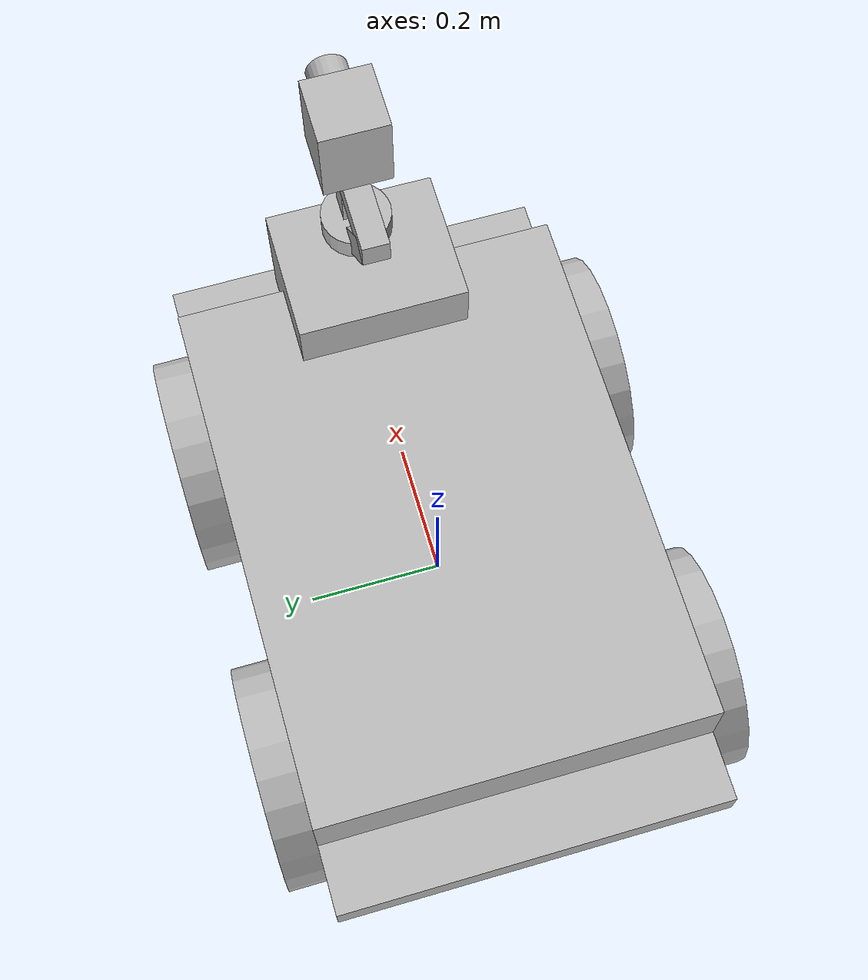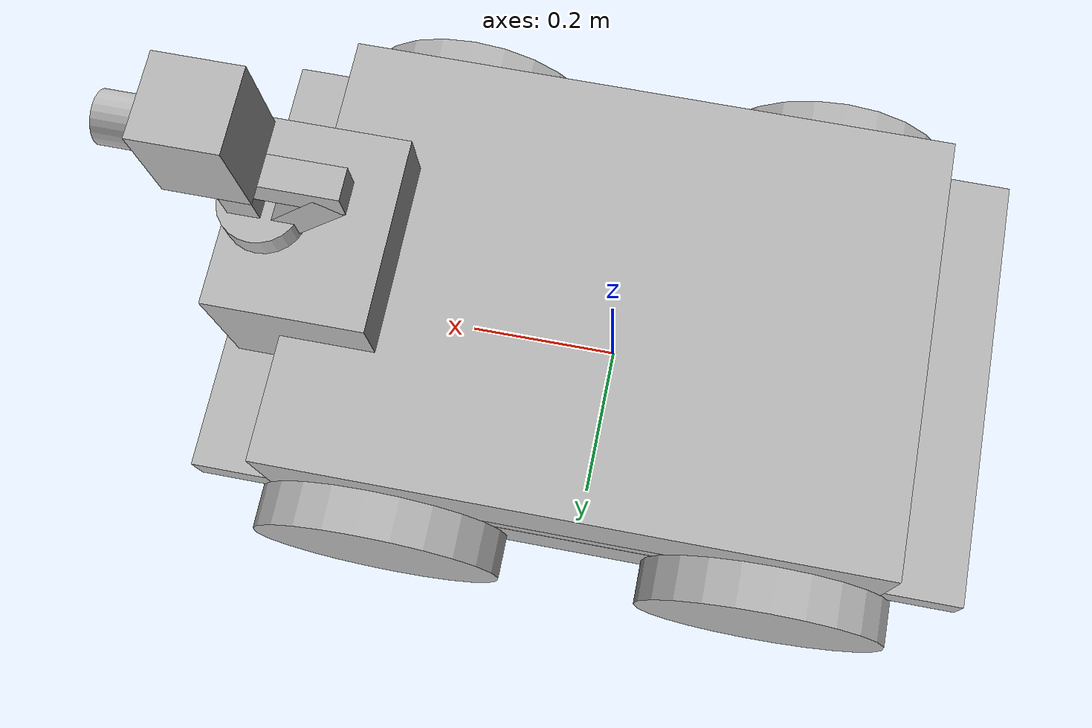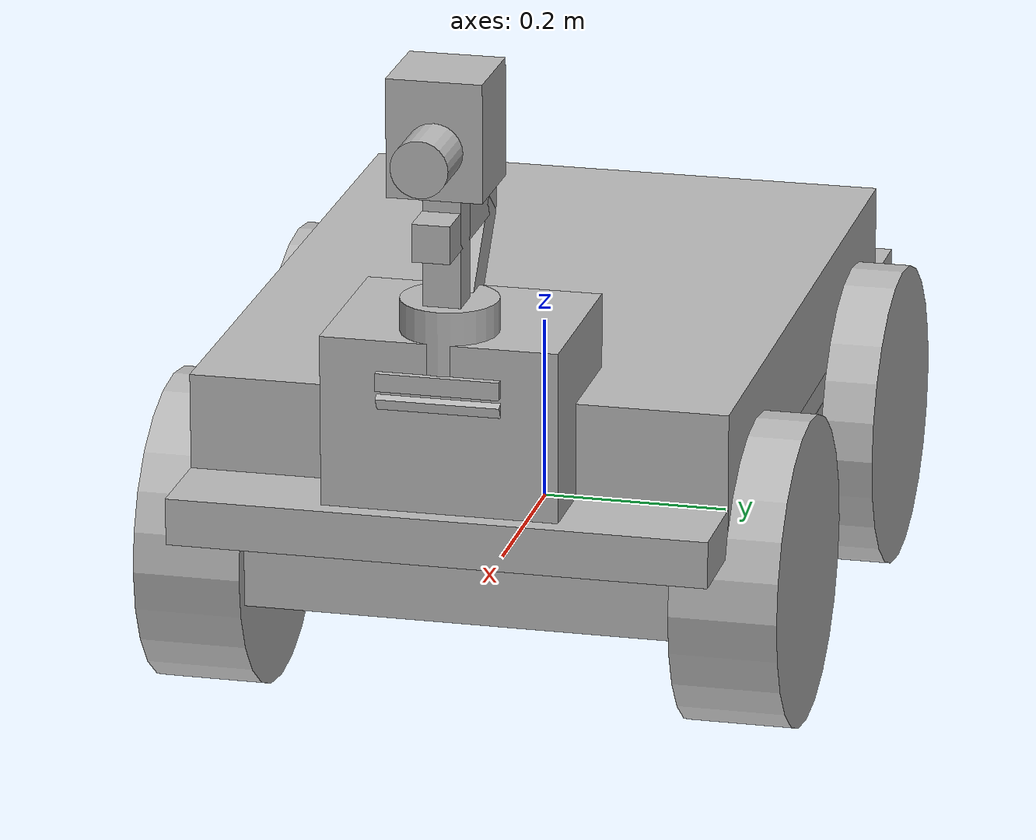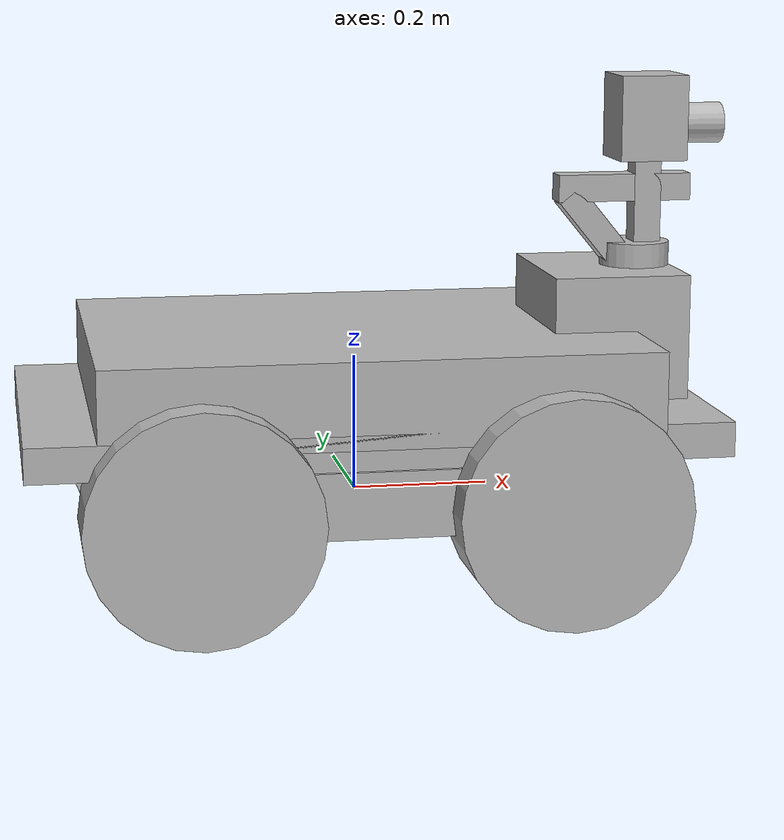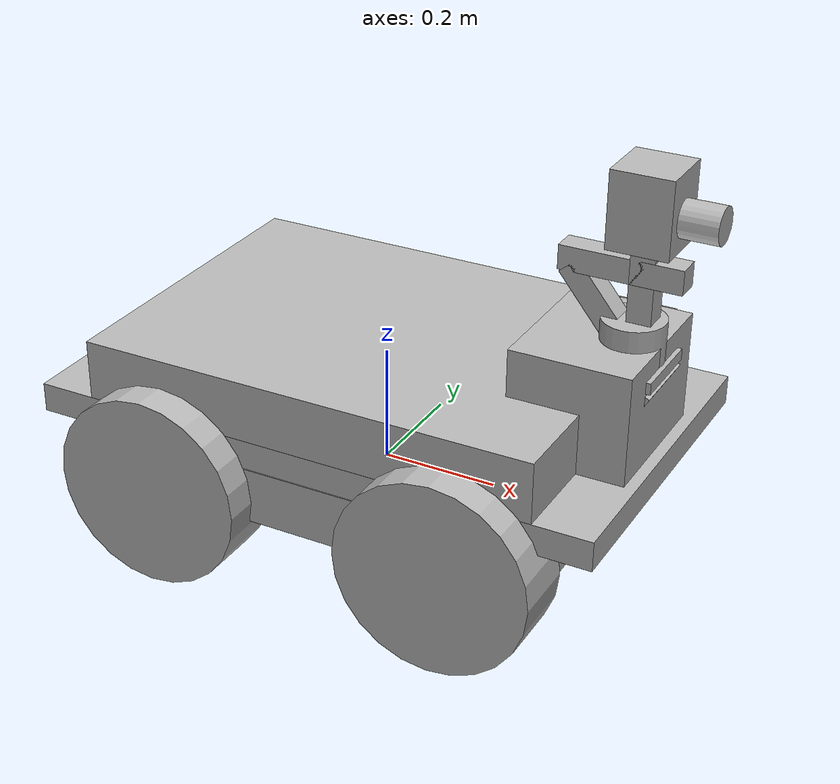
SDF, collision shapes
<?xml version='1.0' encoding='utf-8'?>
<sdf version="1.6">
  <model name="marble_husky">
    <link name="base_link">
      <inertial>
        <pose>-0.000543 -0.084945 0.062329 0 -0 0</pose>
        <mass>46.064</mass>
        <inertia>
          <ixx>0.615397</ixx>
          <ixy>-0.0240585</ixy>
          <ixz>-0.120749</ixz>
          <iyy>1.75388</iyy>
          <iyz>-0.0028322</iyz>
          <izz>2.03641</izz>
        </inertia>
      </inertial>
      <collision name="base_link_collision">
        <pose>0 0 0.12 0 0 0</pose>
        <geometry>
          <box>
            <size>0.9874 0.5709 0.05</size>
          </box>
        </geometry>
      </collision>
      <collision name="base_link_collision_bottom">
        <pose>0 0 0.046 0 0 0</pose>
        <geometry>
          <box>
            <size>0.80 0.5709 0.095</size>
          </box>
        </geometry>
      </collision>
      <collision name="base_link_collision_1">
        <pose>0 0 0.185625 0 -0 0</pose>
        <geometry>
          <box>
            <size>0.78992 0.5709 0.12375</size>
          </box>
        </geometry>
      </collision>
      <collision name="base_link_fixed_joint_lump__camera/camera_link_collision_2">
        <pose>0.478 0 0.285 0 -0 0</pose>
        <geometry>
          <box>
            <size>0.0078 0.13 0.0192</size>
          </box>
        </geometry>
        <surface>
          <contact>
            <ode>
              <kp>1e+13</kp>
              <kd>1</kd>
            </ode>
          </contact>
          <friction>
            <ode>
              <mu2>1</mu2>
              <fdir1>0 0 0</fdir1>
            </ode>
          </friction>
        </surface>
      </collision>
      <collision name="base_link_fixed_joint_lump__camera/camera_link_collision_3">
        <pose>0.473 0 0.260 0 0.5236 0</pose>
        <geometry>
          <box>
            <size>0.0078 0.13 0.0192</size>
          </box>
        </geometry>
        <surface>
          <contact>
            <ode>
              <kp>1e+13</kp>
              <kd>1</kd>
            </ode>
          </contact>
          <friction>
            <ode>
              <mu2>1</mu2>
              <fdir1>0 0 0</fdir1>
            </ode>
          </friction>
        </surface>
      </collision>
      <collision name="base_link_fixed_joint_lump__velodyne_base_link_collision_6">
        <pose>0.424 0 0.327 0 -0 0</pose>
        <geometry>
          <cylinder>
            <length>0.0717</length>
            <radius>0.0516</radius>
          </cylinder>
        </geometry>
      </collision>
      <collision name="base_link_fixed_joint_lump__sensor_tower_8">
       <pose>0.374 0 0.215 0 -0 0</pose>
        <geometry>
          <box>
            <size>0.2 0.25 0.225</size>
          </box>
        </geometry>
      </collision>
      <collision name="base_link_fixed_joint_lump__landing_pad_9">
        <pose>0.0 0 0.155 0 -0 0</pose>
        <geometry>
          <box>
            <size>0.500 0.385 0.155</size>
          </box>
        </geometry>
      </collision>
      <visual name="base_link_visual">
        <geometry>
          <mesh>
            <scale>1 1 1</scale>
            <uri>https://fuel.ignitionrobotics.org/1.0/OpenRobotics/models/MARBLE_HUSKY_SENSOR_CONFIG_4/tip/files/meshes/base_link.dae</uri>
          </mesh>
        </geometry>
      </visual>
      <visual name="base_link_fixed_joint_lump__front_bumper_link_visual_3">
        <pose>0.48 0 0.091 0 -0 0</pose>
        <geometry>
          <mesh>
            <scale>1 1 1</scale>
            <uri>https://fuel.ignitionrobotics.org/1.0/OpenRobotics/models/MARBLE_HUSKY_SENSOR_CONFIG_4/tip/files/meshes/bumper.dae</uri>
          </mesh>
        </geometry>
      </visual>
      <visual name="base_link_fixed_joint_lump__rear_bumper_link_visual_4">
        <pose>-0.48 0 0.091 0 -0 3.14159</pose>
        <geometry>
          <mesh>
            <scale>1 1 1</scale>
            <uri>https://fuel.ignitionrobotics.org/1.0/OpenRobotics/models/MARBLE_HUSKY_SENSOR_CONFIG_4/tip/files/meshes/bumper.dae</uri>
          </mesh>
        </geometry>
      </visual>
      <visual name="base_link_fixed_joint_lump__top_chassis_link_visual_5">
        <geometry>
          <mesh>
            <scale>1 1 1</scale>
            <uri>https://fuel.ignitionrobotics.org/1.0/OpenRobotics/models/MARBLE_HUSKY_SENSOR_CONFIG_4/tip/files/meshes/top_chassis.dae</uri>
          </mesh>
        </geometry>
      </visual>

      <!-- Rail on top of husky -->
      <visual name="base_link_fixed_joint_lump__user_rail_link_visual_13">
        <pose>0.272 0 0.245 0 -0 0</pose>
        <geometry>
          <mesh>
            <scale>1 1 1</scale>
            <uri>https://fuel.ignitionrobotics.org/1.0/OpenRobotics/models/MARBLE_HUSKY_SENSOR_CONFIG_4/tip/files/meshes/user_rail.dae</uri>
          </mesh>
        </geometry>
      </visual>
      <!-- 2D planar lidar at bottom of sensor suite -->
      <visual name="base_link_fixed_joint_lump__planar_lidar_link_visual_14">
        <pose>0.474 0 0.127 0 -0 0</pose>
        <geometry>
          <cylinder>
              <radius>0.045</radius>
              <length>0.05</length>
          </cylinder>
        </geometry>
      </visual>
      <visual name="base_link_fixed_joint_lump__sensor_tower_16">
       <pose>0.374 0 0.215 0 -0 0</pose>
        <geometry>
          <box>
            <size>0.2 0.25 0.225</size>
          </box>
        </geometry>
      </visual>
      <visual name="base_link_fixed_joint_lump__landing_pad_17">
       <pose>0.0 0 0.155 0 -0 0</pose>
        <geometry>
          <box>
            <size>0.500 0.385 0.155</size>
          </box>
        </geometry>
      </visual>

      <visual name="sensor_head_visual">
        <pose>0.4379 0 .54818 0 0 0</pose>
        <geometry>
          <box>
            <size>0.1 0.1 0.125</size>
          </box>
        </geometry>
      </visual>
      <collision name="sensor_head_collision">
        <pose>0.4379 0 0.54818 0 0 0</pose>
        <geometry>
          <box>
            <size>0.1 0.1 0.125</size>
          </box>
        </geometry>
      </collision>
      <visual name="sensor_tower_support_visual">
        <pose>0.4379 0 0.39918 0 0 0</pose>
        <geometry>
          <box>
            <size>0.04 0.04 0.25</size>
          </box>
        </geometry>
      </visual>
      <collision name="sensor_tower_support_collision">
        <pose>0.4379 0 0.39918 0 0 0</pose>
        <geometry>
          <box>
            <size>0.04 0.04 0.25</size>
          </box>
        </geometry>
      </collision>
      <visual name="vertical_lidar_support_visual">
        <pose>0.4029 0 0.44418 0 0 0</pose>/
        <geometry>
          <box>
            <size>0.2 0.04 0.04</size>
          </box>
        </geometry>
      </visual>
      <collision name="vertical_lidar_support_collision">
        <pose>0.4029 0 0.44418 0 0 0</pose>
        <geometry>
          <box>
            <size>0.2 0.04 0.04</size>
          </box>
        </geometry>
      </collision>
      <visual name="diagonal_lidar_support_visual">
        <pose>0.3779 0 0.36418 0 0.8854 0</pose>
        <geometry>
          <box>
            <size>0.180 0.04 0.04</size>
          </box>
        </geometry>
      </visual>
      <collision name="diagonal_lidar_support_collision">
        <pose>0.3779 0 0.36418 0 0.8854 0</pose>
        <geometry>
          <box>
            <size>0.180 0.04 0.04</size>
          </box>
        </geometry>
      </collision>
      <sensor name="imu_sensor" type="imu">
        <always_on>1</always_on>
        <update_rate>500</update_rate>
        <topic>imu</topic>
        <imu>
                <enable_orientation>0</enable_orientation>
                <angular_velocity>
                    <x>
                        <noise type="gaussian">
                            <mean>0</mean>
                            <stddev>0.009</stddev>
                            <bias_mean>0.00075</bias_mean>
                            <bias_stddev>0.005</bias_stddev>
                            <dynamic_bias_stddev>0.00002</dynamic_bias_stddev>
                            <dynamic_bias_correlation_time>400.0</dynamic_bias_correlation_time>
                            <precision>0.00025</precision>
                        </noise>
                    </x>
                    <y>
                        <noise type="gaussian">
                            <mean>0</mean>
                            <stddev>0.009</stddev>
                            <bias_mean>0.00075</bias_mean>
                            <bias_stddev>0.005</bias_stddev>
                            <dynamic_bias_stddev>0.00002</dynamic_bias_stddev>
                            <dynamic_bias_correlation_time>400.0</dynamic_bias_correlation_time>
                            <precision>0.00025</precision>
                        </noise>
                    </y>
                    <z>
                        <noise type="gaussian">
                            <mean>0</mean>
                            <stddev>0.009</stddev>
                            <bias_mean>0.00075</bias_mean>
                            <bias_stddev>0.005</bias_stddev>
                            <dynamic_bias_stddev>0.00002</dynamic_bias_stddev>
                            <dynamic_bias_correlation_time>400.0</dynamic_bias_correlation_time>
                            <precision>0.00025</precision>
                        </noise>
                    </z>
                </angular_velocity>
                <linear_acceleration>
                    <x>
                        <noise type="gaussian">
                            <mean>0</mean>
                            <stddev>0.021</stddev>
                            <bias_mean>0.05</bias_mean>
                            <bias_stddev>0.0075</bias_stddev>
                            <dynamic_bias_stddev>0.000375</dynamic_bias_stddev>
                            <dynamic_bias_correlation_time>175.0</dynamic_bias_correlation_time>
                            <precision>0.005</precision>
                        </noise>
                    </x>
                    <y>
                        <noise type="gaussian">
                            <mean>0</mean>
                            <stddev>0.021</stddev>
                            <bias_mean>0.05</bias_mean>
                            <bias_stddev>0.0075</bias_stddev>
                            <dynamic_bias_stddev>0.000375</dynamic_bias_stddev>
                            <dynamic_bias_correlation_time>175.0</dynamic_bias_correlation_time>
                            <precision>0.005</precision>
                        </noise>
                    </y>
                    <z>
                        <noise type="gaussian">
                            <mean>0</mean>
                            <stddev>0.021</stddev>
                            <bias_mean>0.05</bias_mean>
                            <bias_stddev>0.0075</bias_stddev>
                            <dynamic_bias_stddev>0.000375</dynamic_bias_stddev>
                            <dynamic_bias_correlation_time>175.0</dynamic_bias_correlation_time>
                            <precision>0.005</precision>
                        </noise>
                    </z>
                </linear_acceleration>
          </imu>
      </sensor>

        <!-- Bottom cylinder of Ouster/Velodyne 3D Lidar -->
        <visual name="base_link_fixed_joint_lump__velodyne_base_link_visual_10">
          <pose>0.4379 0 0.61018 0 -0 0</pose>
          <geometry>
            <mesh>
              <scale>1 1 1</scale>
              <uri>https://fuel.ignitionrobotics.org/1.0/OpenRobotics/models/MARBLE_HUSKY_SENSOR_CONFIG_4/tip/files/meshes/VLP16_base_1.dae</uri>
            </mesh>
          </geometry>
        </visual>
        <!-- Top cylinder of Ouster/Velodyne 3D Lidar -->
        <visual name="base_link_fixed_joint_lump__velodyne_base_link_visual_11">
          <pose>0.4379 0 0.61018 0 -0 0</pose>
          <geometry>
            <mesh>
              <scale>1 1 1</scale>
              <uri>https://fuel.ignitionrobotics.org/1.0/OpenRobotics/models/MARBLE_HUSKY_SENSOR_CONFIG_4/tip/files/meshes/VLP16_base_2.dae</uri>
            </mesh>
          </geometry>
        </visual>
        <!-- Main cylinder of Ouster/Velodyne 3D Lidar -->
        <visual name="base_link_fixed_joint_lump__velodyne_visual_12">
          <pose>0.4379 0 0.61018 0 -0 0</pose>
          <geometry>
            <mesh>
              <scale>1 1 1</scale>
              <uri>https://fuel.ignitionrobotics.org/1.0/OpenRobotics/models/MARBLE_HUSKY_SENSOR_CONFIG_4/tip/files/meshes/VLP16_scan.dae</uri>
            </mesh>
          </geometry>
        </visual>

        <!-- OS1-64 3D Laser Configuration (10x2048 or 10x1024 or 20x1024 or 20x512 as possible (rate) x (hor. res.) configs)-->
      <sensor name="front_laser" type="gpu_lidar">
        <visualize>true</visualize>
        <update_rate>3</update_rate>
        <topic>lidar</topic>
        <lidar>
          <scan>
            <horizontal>
              <samples>64</samples>
              <resolution>1</resolution>
              <min_angle>-3.14159</min_angle>
              <max_angle>3.14159</max_angle>
            </horizontal>
            <vertical>
              <samples>8</samples>
              <resolution>1</resolution>
              <min_angle>-0.1</min_angle>
              <max_angle>0.1</max_angle>
            </vertical>
          </scan>
          <range>
            <min>0.2</min>
            <max>6</max>
            <resolution>0.1</resolution>
          </range>
          <noise>
            <type>gaussian</type>
            <mean>0</mean>
            <stddev>0.01</stddev>
          </noise>
        </lidar>
        <pose>0.4379 0 0.67018 0 -0 0</pose>
      </sensor>

      <gravity>1</gravity>
      <velocity_decay/>

        <!-- OS1-64 3D Laser Configuration (10x2048 or 10x1024 or 20x1024 or 20x512 as possible (rate) x (hor. res.) configs)-->
        <visual name="camera_front_visual">
            <pose>0.5179 0 0.53718 0 1.5709 0</pose>
            <geometry>
              <cylinder>
                <length>0.065</length>
                <radius>0.03</radius>
              </cylinder>
            </geometry>
        </visual>
        <collision name="camera_front_collision">
          <pose>0.5179 0 0.53718 0 1.5709 0</pose>
          <geometry>
            <cylinder>
              <length>0.065</length>
              <radius>0.03</radius>
            </cylinder>
          </geometry>
        </collision>

        <sensor name="camera" type="camera">
            <pose> 0.5 0 0.5 0 0 0</pose>
            <camera>
                <horizontal_fov>1.089</horizontal_fov>
                <image>
                  <width>360</width>
                  <height>360</height>
                  <format>R8G8B8</format>
                </image>
                <clip>
                  <near>0.1</near>
                  <far>100</far>
                </clip>
            </camera>
            <always_on>1</always_on>
            <update_rate>15.0</update_rate>
            <visualize>true</visualize>
            <topic>camera</topic>
        </sensor>

      <light name="flash" type="spot">
        <cast_shadows>true</cast_shadows>
        <pose>0.2179 0 0.83718 3.14159 1.5709 0</pose>
        <attenuation>
          <range>20</range>
          <linear>0.1</linear>
          <constant>0.1</constant>
          <quadratic>0.0025</quadratic>
        </attenuation>
        <diffuse>0.8 0.8 0.5 1</diffuse>
        <specular>0.8 0.8 0.5 1</specular>
        <spot>
          <inner_angle>0.9</inner_angle>
          <outer_angle>1.0</outer_angle>
          <falloff>1</falloff>
        </spot>
        <direction>0 0 -1</direction>
      </light>
    </link>

    <link name="front_left_wheel_link">
      <pose>0.256 0.2854 0.03282 0 -0 0</pose>
      <inertial>
        <mass>2.637</mass>
        <inertia>
          <ixx>0.02467</ixx>
          <ixy>0</ixy>
          <ixz>0</ixz>
          <iyy>0.04411</iyy>
          <iyz>0</iyz>
          <izz>0.02467</izz>
        </inertia>
      </inertial>
      <collision name="front_left_wheel_link_collision">
        <pose>0 0 0 1.5707963267948966 -0 0</pose>
        <geometry>
          <cylinder>
            <length>0.1143</length>
            <radius>0.1651</radius>
          </cylinder>
        </geometry>
        <surface>
          <contact>
            <ode>
              <kp>1e+07</kp>
              <kd>1</kd>
            </ode>
          </contact>
          <friction>
            <ode>
              <mu>0.5</mu>
              <mu2>1</mu2>
              <slip1>0.00062</slip1>
              <slip2>0</slip2>
              <fdir1>0 0 1</fdir1>
            </ode>
          </friction>
        </surface>
      </collision>
      <visual name="front_left_wheel_link_visual">
        <geometry>
          <mesh>
            <scale>1 1 1</scale>
            <uri>https://fuel.ignitionrobotics.org/1.0/OpenRobotics/models/MARBLE_HUSKY_SENSOR_CONFIG_4/tip/files/meshes/wheel.dae</uri>
          </mesh>
        </geometry>
      </visual>
      <gravity>1</gravity>
      <velocity_decay/>
    </link>
    <joint name="front_left_wheel_joint" type="revolute">
      <child>front_left_wheel_link</child>
      <parent>base_link</parent>
      <axis>
        <xyz>0 1 0</xyz>
        <limit>
          <lower>-1e+16</lower>
          <upper>1e+16</upper>
        </limit>
        <dynamics>
          <spring_reference>0</spring_reference>
          <spring_stiffness>0</spring_stiffness>
        </dynamics>
        <use_parent_model_frame>1</use_parent_model_frame>
      </axis>
    </joint>
    <link name="front_right_wheel_link">
      <pose>0.256 -0.2854 0.03282 0 -0 0</pose>
      <inertial>
        <mass>2.637</mass>
        <inertia>
          <ixx>0.02467</ixx>
          <ixy>0</ixy>
          <ixz>0</ixz>
          <iyy>0.04411</iyy>
          <iyz>0</iyz>
          <izz>0.02467</izz>
        </inertia>
      </inertial>
      <collision name="front_right_wheel_link_collision">
        <pose>0 0 0 1.5707963267948966 -0 0</pose>
        <geometry>
          <cylinder>
            <length>0.1143</length>
            <radius>0.1651</radius>
          </cylinder>
        </geometry>
        <surface>
          <contact>
            <ode>
              <kp>1e+07</kp>
              <kd>1</kd>
            </ode>
          </contact>
          <friction>
            <ode>
              <mu>0.5</mu>
              <mu2>1</mu2>
              <slip1>0.00062</slip1>
              <slip2>0</slip2>
              <fdir1>0 0 1</fdir1>
            </ode>
          </friction>
        </surface>
      </collision>
      <visual name="front_right_wheel_link_visual">
        <geometry>
          <mesh>
            <scale>1 1 1</scale>
            <uri>https://fuel.ignitionrobotics.org/1.0/OpenRobotics/models/MARBLE_HUSKY_SENSOR_CONFIG_4/tip/files/meshes/wheel.dae</uri>
          </mesh>
        </geometry>
      </visual>
      <gravity>1</gravity>
      <velocity_decay/>
    </link>
    <joint name="front_right_wheel_joint" type="revolute">
      <child>front_right_wheel_link</child>
      <parent>base_link</parent>
      <axis>
        <xyz>0 1 0</xyz>
        <limit>
          <lower>-1e+16</lower>
          <upper>1e+16</upper>
        </limit>
        <dynamics>
          <spring_reference>0</spring_reference>
          <spring_stiffness>0</spring_stiffness>
        </dynamics>
        <use_parent_model_frame>1</use_parent_model_frame>
      </axis>
    </joint>
    <link name="rear_left_wheel_link">
      <pose>-0.256 0.2854 0.03282 0 -0 0</pose>
      <inertial>
        <mass>2.637</mass>
        <inertia>
          <ixx>0.02467</ixx>
          <ixy>0</ixy>
          <ixz>0</ixz>
          <iyy>0.04411</iyy>
          <iyz>0</iyz>
          <izz>0.02467</izz>
        </inertia>
      </inertial>
      <collision name="rear_left_wheel_link_collision">
        <pose>0 0 0 1.5707963267948966 -0 0</pose>
        <geometry>
          <cylinder>
            <length>0.1143</length>
            <radius>0.1651</radius>
          </cylinder>
        </geometry>
        <surface>
          <contact>
            <ode>
              <kp>1e+07</kp>
              <kd>1</kd>
            </ode>
          </contact>
          <friction>
            <ode>
              <mu>0.5</mu>
              <mu2>1</mu2>
              <slip1>0.00062</slip1>
              <slip2>0</slip2>
              <fdir1>0 0 1</fdir1>
            </ode>
          </friction>
        </surface>
      </collision>
      <visual name="rear_left_wheel_link_visual">
        <geometry>
          <mesh>
            <scale>1 1 1</scale>
            <uri>https://fuel.ignitionrobotics.org/1.0/OpenRobotics/models/MARBLE_HUSKY_SENSOR_CONFIG_4/tip/files/meshes/wheel.dae</uri>
          </mesh>
        </geometry>
      </visual>
      <gravity>1</gravity>
      <velocity_decay/>
    </link>
    <joint name="rear_left_wheel_joint" type="revolute">
      <child>rear_left_wheel_link</child>
      <parent>base_link</parent>
      <axis>
        <xyz>0 1 0</xyz>
        <limit>
          <lower>-1e+16</lower>
          <upper>1e+16</upper>
        </limit>
        <dynamics>
          <spring_reference>0</spring_reference>
          <spring_stiffness>0</spring_stiffness>
        </dynamics>
        <use_parent_model_frame>1</use_parent_model_frame>
      </axis>
    </joint>
    <link name="rear_right_wheel_link">
      <pose>-0.256 -0.2854 0.03282 0 -0 0</pose>
      <inertial>
        <mass>2.637</mass>
        <inertia>
          <ixx>0.02467</ixx>
          <ixy>0</ixy>
          <ixz>0</ixz>
          <iyy>0.04411</iyy>
          <iyz>0</iyz>
          <izz>0.02467</izz>
        </inertia>
      </inertial>
      <collision name="rear_right_wheel_link_collision">
        <pose>0 0 0 1.5707963267948966 -0 0</pose>
        <geometry>
          <cylinder>
            <length>0.1143</length>
            <radius>0.1651</radius>
          </cylinder>
        </geometry>
        <surface>
          <contact>
            <ode>
              <kp>1e+07</kp>
              <kd>1</kd>
            </ode>
          </contact>
          <friction>
            <ode>
              <mu>0.5</mu>
              <mu2>1</mu2>
              <slip1>0.00062</slip1>
              <slip2>0</slip2>
              <fdir1>0 0 1</fdir1>
            </ode>
          </friction>
        </surface>
      </collision>
      <visual name="rear_right_wheel_link_visual">
        <geometry>
          <mesh>
            <scale>1 1 1</scale>
            <uri>https://fuel.ignitionrobotics.org/1.0/OpenRobotics/models/MARBLE_HUSKY_SENSOR_CONFIG_4/tip/files/meshes/wheel.dae</uri>
          </mesh>
        </geometry>
      </visual>
      <gravity>1</gravity>
      <velocity_decay/>
    </link>
    <joint name="rear_right_wheel_joint" type="revolute">
      <child>rear_right_wheel_link</child>
      <parent>base_link</parent>
      <axis>
        <xyz>0 1 0</xyz>
        <limit>
          <lower>-1e+16</lower>
          <upper>1e+16</upper>
        </limit>
        <dynamics>
          <spring_reference>0</spring_reference>
          <spring_stiffness>0</spring_stiffness>
        </dynamics>
        <use_parent_model_frame>1</use_parent_model_frame>
      </axis>
    </joint>

    <plugin
        filename="gz-sim-diff-drive-system"
        name="gz::sim::systems::DiffDrive">
        <left_joint>rear_left_wheel_joint</left_joint>
        <left_joint>front_left_wheel_joint</left_joint>
        <right_joint>rear_right_wheel_joint</right_joint>
        <right_joint>front_right_wheel_joint</right_joint>
        <wheel_separation>1.25</wheel_separation>
        <wheel_radius>0.3</wheel_radius>
        <odom_publish_frequency>1</odom_publish_frequency>
        <topic>cmd_vel</topic>
      </plugin>

       <!-- Moving Forward: W -->
      <plugin filename="gz-sim-triggered-publisher-system"
              name="gz::sim::systems::TriggeredPublisher">
          <input type="gz.msgs.Int32" topic="/keyboard/keypress">
              <match field="data">87</match>
          </input>
          <output type="gz.msgs.Twist" topic="/cmd_vel">
              linear: {x: 2.0}, angular: {z: 0.0}
          </output>
      </plugin>

      <!-- Moving Backward: X -->
      <plugin filename="gz-sim-triggered-publisher-system"
              name="gz::sim::systems::TriggeredPublisher">
          <input type="gz.msgs.Int32" topic="/keyboard/keypress">
              <match field="data">88</match>
          </input>
          <output type="gz.msgs.Twist" topic="/cmd_vel">
              linear: {x: -2.0}, angular: {z: 0.0}
          </output>
      </plugin>

      <!-- Rotating right: D -->
      <plugin filename="gz-sim-triggered-publisher-system"
              name="gz::sim::systems::TriggeredPublisher">
          <input type="gz.msgs.Int32" topic="/keyboard/keypress">
              <match field="data">68</match>
          </input>
          <output type="gz.msgs.Twist" topic="/cmd_vel">
              linear: {x: 0.0}, angular: {z: -0.5}
          </output>
      </plugin>

      <!--Rotating left: A -->
      <plugin filename="gz-sim-triggered-publisher-system"
              name="gz::sim::systems::TriggeredPublisher">
          <input type="gz.msgs.Int32" topic="/keyboard/keypress">
              <match field="data">65</match>
          </input>
          <output type="gz.msgs.Twist" topic="/cmd_vel">
              linear: {x: 0.0}, angular: {z: 0.5}
          </output>
      </plugin>

      <!--Stop: S -->
      <plugin filename="gz-sim-triggered-publisher-system"
              name="gz::sim::systems::TriggeredPublisher">
          <input type="gz.msgs.Int32" topic="/keyboard/keypress">
              <match field="data">83</match>
          </input>
          <output type="gz.msgs.Twist" topic="/cmd_vel">
              linear: {x: 0.0}, angular: {z: 0.0}
          </output>
      </plugin>
       <plugin filename="gz-sim-triggered-publisher-system"
              name="gz::sim::systems::TriggeredPublisher">
          <input type="gz.msgs.Int32" topic="/keyboard/keypress">
              <match field="data">87</match>
          </input>
          <output type="gz.msgs.Twist" topic="/cmd_vel">
              linear: {x: 2.0}, angular: {z: 0.0}
          </output>
      </plugin>

      <!-- Moving Backward: X -->
      <plugin filename="gz-sim-triggered-publisher-system"
              name="gz::sim::systems::TriggeredPublisher">
          <input type="gz.msgs.Int32" topic="/keyboard/keypress">
              <match field="data">88</match>
          </input>
          <output type="gz.msgs.Twist" topic="/cmd_vel">
              linear: {x: -2.0}, angular: {z: 0.0}
          </output>
      </plugin>

      <!-- Rotating right: D -->
      <plugin filename="gz-sim-triggered-publisher-system"
              name="gz::sim::systems::TriggeredPublisher">
          <input type="gz.msgs.Int32" topic="/keyboard/keypress">
              <match field="data">68</match>
          </input>
          <output type="gz.msgs.Twist" topic="/cmd_vel">
              linear: {x: 0.0}, angular: {z: -0.5}
          </output>
      </plugin>

      <!--Rotating left: A -->
      <plugin filename="gz-sim-triggered-publisher-system"
              name="gz::sim::systems::TriggeredPublisher">
          <input type="gz.msgs.Int32" topic="/keyboard/keypress">
              <match field="data">65</match>
          </input>
          <output type="gz.msgs.Twist" topic="/cmd_vel">
              linear: {x: 0.0}, angular: {z: 0.5}
          </output>
      </plugin>

      <!--Stop: S -->
      <plugin filename="gz-sim-triggered-publisher-system"
              name="gz::sim::systems::TriggeredPublisher">
          <input type="gz.msgs.Int32" topic="/keyboard/keypress">
              <match field="data">83</match>
          </input>
          <output type="gz.msgs.Twist" topic="/cmd_vel">
              linear: {x: 0.0}, angular: {z: 0.0}
          </output>
      </plugin>

  </model>
</sdf>
